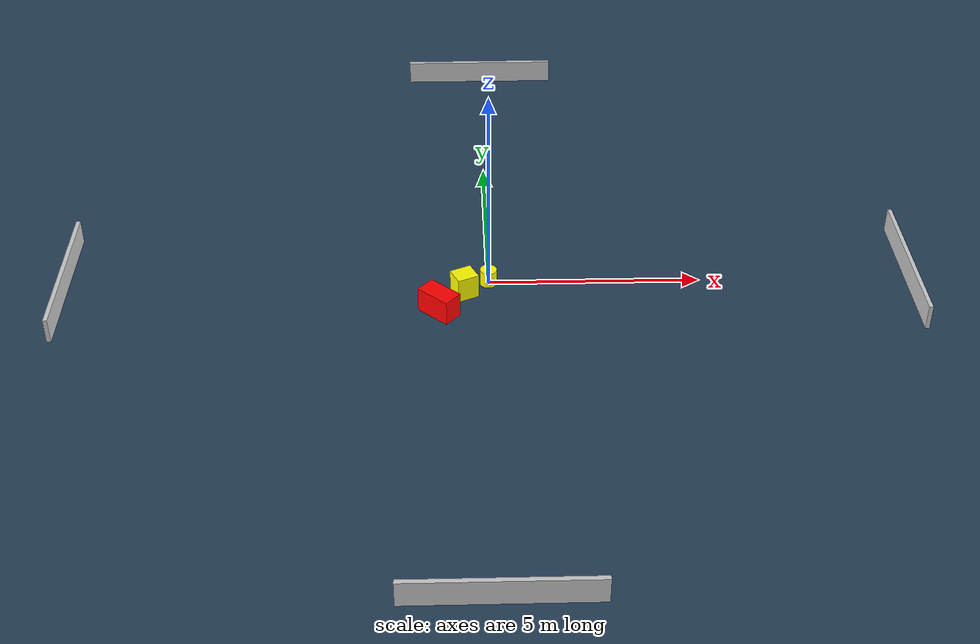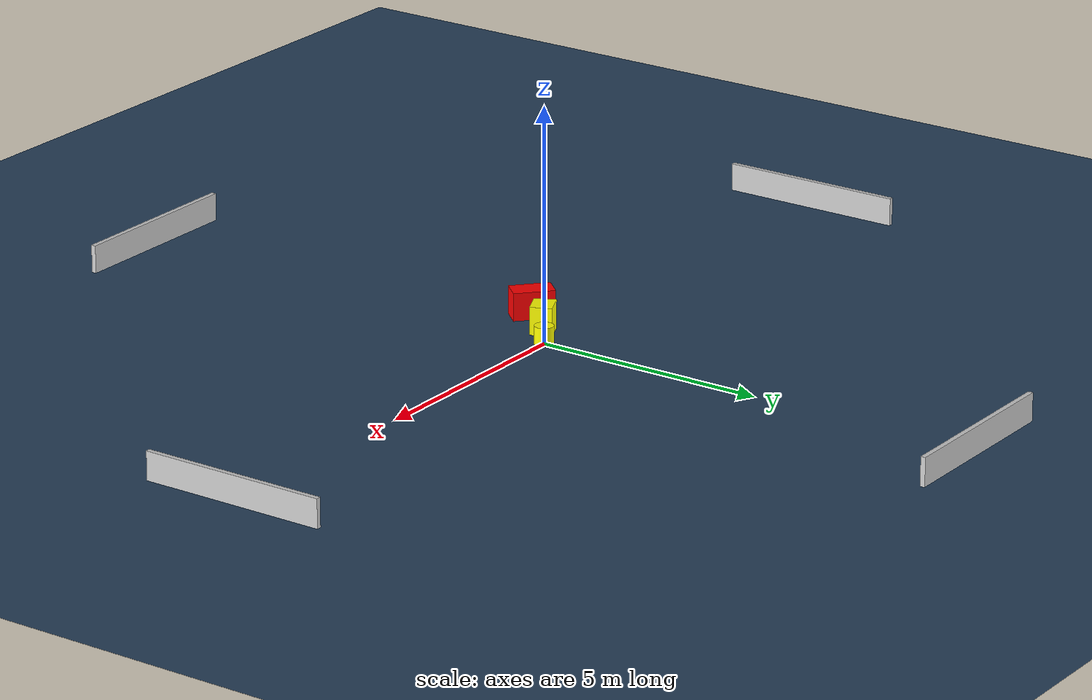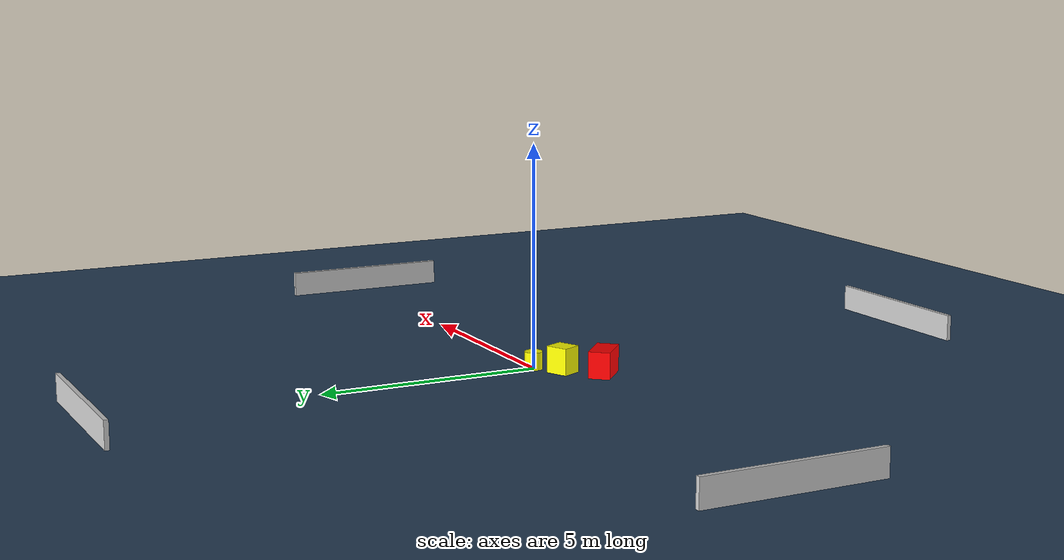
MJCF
<?xml version="1.0" ?>
<mujoco model="generated_environment">
  <option timestep="0.01" integrator="RK4" cone="elliptic"/>
  <default>
    <geom density="1"/>
  </default>
  <asset>
    <texture builtin="gradient" height="3072" name="skybox" rgb1="0.3 0.5 0.7" rgb2="0 0 0" type="skybox" width="512"/>
    <texture builtin="checker" height="300" name="groundplane" rgb1="0.2 0.3 0.4" rgb2="0.1 0.2 0.3" type="2d" width="300"/>
    <material name="groundplane" reflectance="0.2" texrepeat="5 5" texture="groundplane"/>
  </asset>
  <worldbody>
    <light dir="0 0 -1" directional="true" pos="0 0 1.5"/>
    <geom condim="3" friction="0.5 0.005 0.001" material="groundplane" name="floor" pos="0 0 0" size="0 0 0.05" type="plane"/>
    <body name="walls">
      <geom name="wall_1" condim="4" pos="-10.0 0.0 0.3" rgba="0.800000011920929 0.800000011920929 0.800000011920929 1.0" size="0.05 2.0 0.3" type="box"/>
      <geom name="wall_2" condim="4" pos="10.0 0.0 0.3" rgba="0.800000011920929 0.800000011920929 0.800000011920929 1.0" size="0.05 2.0 0.3" type="box"/>
      <geom name="wall_3" condim="4" pos="0.0 -10.0 0.3" rgba="0.800000011920929 0.800000011920929 0.800000011920929 1.0" size="2.0 0.05 0.3" type="box"/>
      <geom name="wall_4" condim="4" pos="0.0 10.0 0.3" rgba="0.800000011920929 0.800000011920929 0.800000011920929 1.0" size="2.0 0.05 0.3" type="box"/>
    </body>
    <body name="robot">
      <joint name="joint_x" type="slide" pos="0 0 0" axis="1 0 0"/>
      <joint name="joint_y" type="slide" pos="0 0 0" axis="0 1 0"/>
      <geom name="robot" type="cylinder" pos="0.0 0.0 0.2" size="0.2 0.2 0.0" mass="5.0" friction="1.0 0.005 0.0001" condim="4" rgba="1.0 1.0 0.0 1.0"/>
    </body>
    <body name="obstacle_1_movable">
      <geom name="obstacle_1_movable" condim="4" pos="-0.5722949593188679 -0.42335185421107263 0.3" euler="0 0 24.85456148489813" friction="0.0 0.005 0.001" rgba="1.0 1.0 0.0 1.0" size="0.26204123408442975 0.23162414555972255 0.3" type="box" mass="0.1"/>
      <joint type="free"/>
    </body>
    <body name="obstacle_2_static">
      <geom name="obstacle_2_static" condim="4" pos="-1.1660472535000248 -1.1176072015410612 0.3" euler="0 0 137.86902849567966" friction="0.0 0.005 0.001" rgba="1.0 0.0 0.0 1.0" size="0.43951313332311287 0.24362980305231324 0.3" type="box"/>
    </body>
  </worldbody>
  <actuator>
    <motor name="actuator_x" joint="joint_x" gear="1" ctrlrange="-1 1"/>
    <motor name="actuator_y" joint="joint_y" gear="1" ctrlrange="-1 1"/>
  </actuator>
</mujoco>
